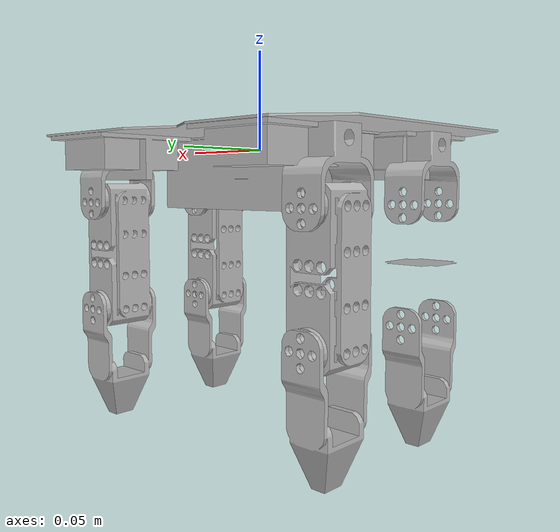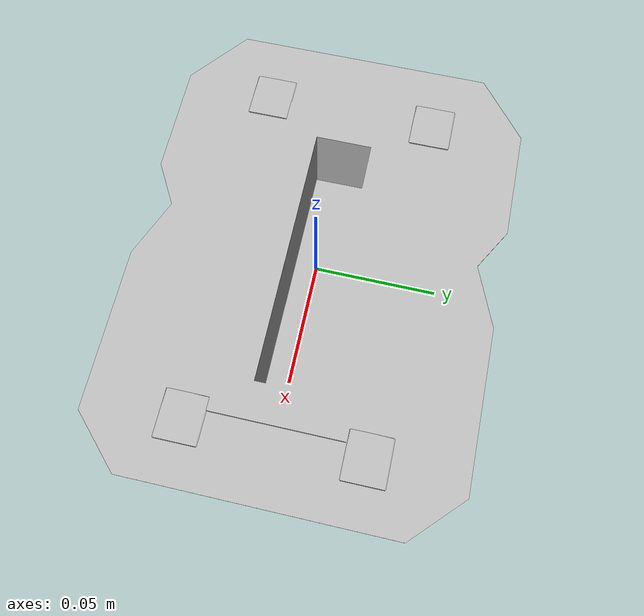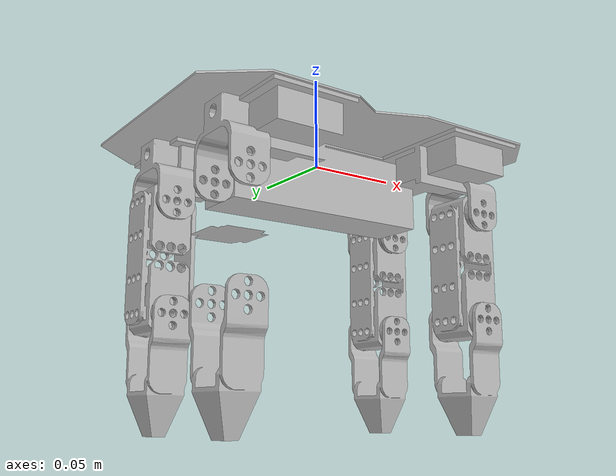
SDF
<sdf version='1.5'>
  <model name='ker'>
    <link name='odom'>
      <pose frame=''>0 0 0 0 -0 0</pose>
      <inertial>
        <pose frame=''>0 0 0 0 -0 0</pose>
        <mass>0.104525</mass>
        <inertia>
          <ixx>7.935e-05</ixx>
          <ixy>-3.8e-07</ixy>
          <ixz>1.27e-06</ixz>
          <iyy>0.00016719</iyy>
          <iyz>3e-08</iyz>
          <izz>0.00023972</izz>
        </inertia>
      </inertial>
      <velocity_decay>
        <linear>10000000</linear>
        <angular>10000000</angular>
      </velocity_decay>
      <collision name='odom_collision'>
        <pose frame=''>0 0 0 0 -0 0</pose>
        <geometry>
          <box>
            <size>0 0 0</size>
          </box>
        </geometry>
      </collision>
      <collision name='odom_collision_odom_1'>
        <pose frame=''>0 0 0 0 -0 0</pose>
        <geometry>
          <box>
            <size>0.2 0.12 0.031</size>
          </box>
        </geometry>
      </collision>
      <visual name='odom_visual'>
        <pose frame=''>0 0 0 0 -0 0</pose>
        <geometry>
          <box>
            <size>0 0 0</size>
          </box>
        </geometry>
      </visual>
      <visual name='odom_visual_odom_1'>
        <pose frame=''>0 0 0 0 -0 0</pose>
        <geometry>
          <mesh>
            <scale>1 1 1</scale>
            <uri>model://ker_description/meshes/platf_3_1.STL</uri>
          </mesh>
        </geometry>
      </visual>
    </link>
    <link name='motor_1'>
      <pose frame=''>0.073 0.036 0.0005 0 -0 0</pose>
      <inertial>
        <pose frame=''>0 0 -0.0125 0 -0 0</pose>
        <mass>0.0082825</mass>
        <inertia>
          <ixx>1.63e-06</ixx>
          <ixy>0</ixy>
          <ixz>0</ixz>
          <iyy>1.14e-06</iyy>
          <iyz>0</iyz>
          <izz>1.03e-06</izz>
        </inertia>
      </inertial>
      <collision name='motor_1_collision'>
        <pose frame=''>0 0 -0.0125 0 -0 0</pose>
        <geometry>
          <box>
            <size>0.022 0.0344 0.0472</size>
          </box>
        </geometry>
      </collision>
      <visual name='motor_1_visual'>
        <pose frame=''>0 0 -0.0125 0 -0 0</pose>
        <geometry>
          <mesh>
            <scale>1 1 1</scale>
            <uri>model://ker_description/meshes/roll.STL</uri>
          </mesh>
        </geometry>
      </visual>
    </link>
    <joint name='motor_1_joint' type='revolute'>
      <child>motor_1</child>
      <parent>odom</parent>
      <axis>
        <xyz>1 0 0</xyz>
        <limit>
          <lower>-3.14</lower>
          <upper>3.14</upper>
          <effort>10</effort>
          <velocity>0.5</velocity>
        </limit>
        <dynamics>
          <damping>0</damping>
          <friction>0</friction>
          <spring_reference>0</spring_reference>
          <spring_stiffness>0</spring_stiffness>
        </dynamics>
        <use_parent_model_frame>1</use_parent_model_frame>
      </axis>
    </joint>
    <link name='humerus_1'>
      <pose frame=''>0.073 0.036 -0.0267 0 -0 0</pose>
      <inertial>
        <pose frame=''>0 0 -0.028 0 -0 0</pose>
        <mass>0.0361976</mass>
        <inertia>
          <ixx>2.198e-05</ixx>
          <ixy>0</ixy>
          <ixz>4e-08</ixz>
          <iyy>2.188e-05</iyy>
          <iyz>0</iyz>
          <izz>3.91e-06</izz>
        </inertia>
      </inertial>
      <velocity_decay>
        <linear>10000000</linear>
        <angular>10000000</angular>
      </velocity_decay>
      <collision name='humerus_1_collision'>
        <pose frame=''>0 0 -0.028 0 -0 0</pose>
        <geometry>
          <box>
            <size>0.022 0.025 0.076</size>
          </box>
        </geometry>
      </collision>
      <visual name='humerus_1_visual'>
        <pose frame=''>0 0 -0.028 0 -0 0</pose>
        <geometry>
          <mesh>
            <scale>1 1 1</scale>
            <uri>model://ker_description/meshes/humerus.stl</uri>
          </mesh>
        </geometry>
      </visual>
    </link>
    <joint name='humerus_1_joint' type='revolute'>
      <child>humerus_1</child>
      <parent>motor_1</parent>
      <axis>
        <xyz>0 1 0</xyz>
        <limit>
          <lower>-3.14</lower>
          <upper>3.14</upper>
          <effort>10</effort>
          <velocity>0.5</velocity>
        </limit>
        <dynamics>
          <damping>0</damping>
          <friction>0</friction>
          <spring_reference>0</spring_reference>
          <spring_stiffness>0</spring_stiffness>
        </dynamics>
        <use_parent_model_frame>1</use_parent_model_frame>
      </axis>
    </joint>
    <link name='radius_1'>
      <pose frame=''>0.073 0.036 -0.0827 0 -0 0</pose>
      <inertial>
        <pose frame=''>0 0 -0.02428 0 -0 0</pose>
        <mass>0.00992447</mass>
        <inertia>
          <ixx>2.69e-06</ixx>
          <ixy>0</ixy>
          <ixz>0</ixz>
          <iyy>1.99e-06</iyy>
          <iyz>0</iyz>
          <izz>1.22e-06</izz>
        </inertia>
      </inertial>
      <velocity_decay>
        <linear>10000000</linear>
        <angular>10000000</angular>
      </velocity_decay>
      <collision name='radius_1_collision'>
        <pose frame=''>0 0 -0.04928 0 -0 0</pose>
        <geometry>
          <sphere>
            <radius>0.01</radius>
          </sphere>
        </geometry>
        <surface>
          <contact>
            <collide_without_contact>0</collide_without_contact>
            <ode>
              <max_vel>1.2</max_vel>
              <min_depth>0</min_depth>
            </ode>
            <bullet>
              <kp>1000000</kp>
              <kd>10</kd>
            </bullet>
          </contact>
          <friction>
            <ode>
              <mu>10</mu>
              <mu2>10</mu2>
              <fdir1>1 1 0</fdir1>
            </ode>
            <bullet>
              <friction>1</friction>
              <friction2>1</friction2>
              <rolling_friction>1</rolling_friction>
              <fdir1>1 1 1</fdir1>
            </bullet>
          </friction>
        </surface>
      </collision>
      <visual name='radius_1_visual'>
        <pose frame=''>0 0 -0.01628 0 -0 0</pose>
        <geometry>
          <mesh>
            <scale>1 1 1</scale>
            <uri>model://ker_description/meshes/radius_3_dec.STL</uri>
          </mesh>
        </geometry>
      </visual>
      <gravity>1</gravity>
      <self_collide>0</self_collide>
    </link>
    <joint name='radius_1_joint' type='revolute'>
      <child>radius_1</child>
      <parent>humerus_1</parent>
      <axis>
        <xyz>0 1 0</xyz>
        <limit>
          <lower>-3.14</lower>
          <upper>3.14</upper>
          <effort>10</effort>
          <velocity>0.5</velocity>
        </limit>
        <dynamics>
          <damping>0</damping>
          <friction>0</friction>
          <spring_reference>0</spring_reference>
          <spring_stiffness>0</spring_stiffness>
        </dynamics>
        <use_parent_model_frame>1</use_parent_model_frame>
      </axis>
    </joint>
    <link name='motor_2'>
      <pose frame=''>0.073 -0.036 0.0005 0 -0 0</pose>
      <inertial>
        <pose frame=''>0 0 -0.0125 0 -0 0</pose>
        <mass>0.0082825</mass>
        <inertia>
          <ixx>1.63e-06</ixx>
          <ixy>0</ixy>
          <ixz>0</ixz>
          <iyy>1.14e-06</iyy>
          <iyz>0</iyz>
          <izz>1.03e-06</izz>
        </inertia>
      </inertial>
      <collision name='motor_2_collision'>
        <pose frame=''>0 0 -0.0125 0 -0 0</pose>
        <geometry>
          <box>
            <size>0.022 0.0344 0.0472</size>
          </box>
        </geometry>
      </collision>
      <visual name='motor_2_visual'>
        <pose frame=''>0 0 -0.0125 0 -0 0</pose>
        <geometry>
          <mesh>
            <scale>1 1 1</scale>
            <uri>model://ker_description/meshes/roll.STL</uri>
          </mesh>
        </geometry>
      </visual>
    </link>
    <joint name='motor_2_joint' type='revolute'>
      <child>motor_2</child>
      <parent>odom</parent>
      <axis>
        <xyz>1 0 0</xyz>
        <limit>
          <lower>-3.14</lower>
          <upper>3.14</upper>
          <effort>10</effort>
          <velocity>0.5</velocity>
        </limit>
        <dynamics>
          <damping>0</damping>
          <friction>0</friction>
          <spring_reference>0</spring_reference>
          <spring_stiffness>0</spring_stiffness>
        </dynamics>
        <use_parent_model_frame>1</use_parent_model_frame>
      </axis>
    </joint>
    <link name='humerus_2'>
      <pose frame=''>0.073 -0.036 -0.0267 0 -0 -3.14159</pose>
      <inertial>
        <pose frame=''>0 0 -0.028 0 -0 0</pose>
        <mass>0.0361976</mass>
        <inertia>
          <ixx>2.198e-05</ixx>
          <ixy>0</ixy>
          <ixz>4e-08</ixz>
          <iyy>2.188e-05</iyy>
          <iyz>0</iyz>
          <izz>3.91e-06</izz>
        </inertia>
      </inertial>
      <velocity_decay>
        <linear>10000000</linear>
        <angular>10000000</angular>
      </velocity_decay>
      <collision name='humerus_2_collision'>
        <pose frame=''>0 0 -0.028 0 -0 0</pose>
        <geometry>
          <box>
            <size>0.022 0.025 0.076</size>
          </box>
        </geometry>
      </collision>
      <visual name='humerus_2_visual'>
        <pose frame=''>0 0 -0.028 0 -0 0</pose>
        <geometry>
          <mesh>
            <scale>1 1 1</scale>
            <uri>model://ker_description/meshes/humerus.stl</uri>
          </mesh>
        </geometry>
      </visual>
    </link>
    <joint name='humerus_2_joint' type='revolute'>
      <child>humerus_2</child>
      <parent>motor_2</parent>
      <axis>
        <xyz>-2.06823e-13 1 0</xyz>
        <limit>
          <lower>-3.14</lower>
          <upper>3.14</upper>
          <effort>10</effort>
          <velocity>0.5</velocity>
        </limit>
        <dynamics>
          <damping>0</damping>
          <friction>0</friction>
          <spring_reference>0</spring_reference>
          <spring_stiffness>0</spring_stiffness>
        </dynamics>
        <use_parent_model_frame>1</use_parent_model_frame>
      </axis>
    </joint>
    <link name='radius_2'>
      <pose frame=''>0.073 -0.036 -0.0827 0 -0 -3.14159</pose>
      <inertial>
        <pose frame=''>0 0 -0.02428 0 -0 0</pose>
        <mass>0.00992447</mass>
        <inertia>
          <ixx>2.69e-06</ixx>
          <ixy>0</ixy>
          <ixz>0</ixz>
          <iyy>1.99e-06</iyy>
          <iyz>0</iyz>
          <izz>1.22e-06</izz>
        </inertia>
      </inertial>
      <velocity_decay>
        <linear>10000000</linear>
        <angular>10000000</angular>
      </velocity_decay>
      <collision name='radius_2_collision'>
        <pose frame=''>0 0 -0.04928 0 -0 0</pose>
        <geometry>
          <sphere>
            <radius>0.01</radius>
          </sphere>
        </geometry>
        <surface>
          <contact>
            <collide_without_contact>0</collide_without_contact>
            <ode>
              <max_vel>1.2</max_vel>
              <min_depth>0</min_depth>
            </ode>
            <bullet>
              <kp>1000000</kp>
              <kd>10</kd>
            </bullet>
          </contact>
          <friction>
            <ode>
              <mu>10</mu>
              <mu2>10</mu2>
              <fdir1>1 1 0</fdir1>
            </ode>
            <bullet>
              <friction>1</friction>
              <friction2>1</friction2>
              <rolling_friction>1</rolling_friction>
              <fdir1>1 1 1</fdir1>
            </bullet>
          </friction>
        </surface>
      </collision>
      <visual name='radius_2_visual'>
        <pose frame=''>0 0 -0.01628 0 -0 0</pose>
        <geometry>
          <mesh>
            <scale>1 1 1</scale>
            <uri>model://ker_description/meshes/radius_3_dec.STL</uri>
          </mesh>
        </geometry>
      </visual>
      <gravity>1</gravity>
      <self_collide>0</self_collide>
    </link>
    <joint name='radius_2_joint' type='revolute'>
      <child>radius_2</child>
      <parent>humerus_2</parent>
      <axis>
        <xyz>-2.06823e-13 1 0</xyz>
        <limit>
          <lower>-3.14</lower>
          <upper>3.14</upper>
          <effort>10</effort>
          <velocity>0.5</velocity>
        </limit>
        <dynamics>
          <damping>0</damping>
          <friction>0</friction>
          <spring_reference>0</spring_reference>
          <spring_stiffness>0</spring_stiffness>
        </dynamics>
        <use_parent_model_frame>1</use_parent_model_frame>
      </axis>
    </joint>
    <link name='motor_3'>
      <pose frame=''>-0.073 -0.036 0.0005 0 -0 0</pose>
      <inertial>
        <pose frame=''>0 0 -0.0125 0 -0 0</pose>
        <mass>0.0082825</mass>
        <inertia>
          <ixx>1.63e-06</ixx>
          <ixy>0</ixy>
          <ixz>0</ixz>
          <iyy>1.14e-06</iyy>
          <iyz>0</iyz>
          <izz>1.03e-06</izz>
        </inertia>
      </inertial>
      <collision name='motor_3_collision'>
        <pose frame=''>0 0 -0.0125 0 -0 0</pose>
        <geometry>
          <box>
            <size>0.022 0.0344 0.0472</size>
          </box>
        </geometry>
      </collision>
      <visual name='motor_3_visual'>
        <pose frame=''>0 0 -0.0125 0 -0 0</pose>
        <geometry>
          <mesh>
            <scale>1 1 1</scale>
            <uri>model://ker_description/meshes/roll.STL</uri>
          </mesh>
        </geometry>
      </visual>
    </link>
    <joint name='motor_3_joint' type='revolute'>
      <child>motor_3</child>
      <parent>odom</parent>
      <axis>
        <xyz>1 0 0</xyz>
        <limit>
          <lower>-3.14</lower>
          <upper>3.14</upper>
          <effort>10</effort>
          <velocity>0.5</velocity>
        </limit>
        <dynamics>
          <damping>0</damping>
          <friction>0</friction>
          <spring_reference>0</spring_reference>
          <spring_stiffness>0</spring_stiffness>
        </dynamics>
        <use_parent_model_frame>1</use_parent_model_frame>
      </axis>
    </joint>
    <link name='femur_2'>
      <pose frame=''>-0.073 -0.036 -0.0267 0 -0 -3.14159</pose>
      <inertial>
        <pose frame=''>0 0 -0.028 0 -0 0</pose>
        <mass>0.0361976</mass>
        <inertia>
          <ixx>2.198e-05</ixx>
          <ixy>0</ixy>
          <ixz>4e-08</ixz>
          <iyy>2.188e-05</iyy>
          <iyz>0</iyz>
          <izz>3.91e-06</izz>
        </inertia>
      </inertial>
       <velocity_decay>
        <linear>10000000</linear>
        <angular>10000000</angular>
      </velocity_decay>
      <collision name='femur_2_collision'>
        <pose frame=''>0 0 -0.028 0 -0 0</pose>
        <geometry>
          <box>
            <size>0.022 0.025 0.076</size>
          </box>
        </geometry>
      </collision>
      <visual name='femur_2_visual'>
        <pose frame=''>0 0 -0.028 0 -0 0</pose>
        <geometry>
          <mesh>
            <scale>1 1 0</scale>
            <uri>model://ker_description/meshes/humerus.stl</uri>
          </mesh>
        </geometry>
      </visual>
    </link>
    <joint name='femur_2_joint' type='revolute'>
      <child>femur_2</child>
      <parent>motor_3</parent>
      <axis>
        <xyz>-2.06823e-13 1 0</xyz>
        <limit>
          <lower>-3.14</lower>
          <upper>3.14</upper>
          <effort>10</effort>
          <velocity>0.5</velocity>
        </limit>
        <dynamics>
          <damping>0</damping>
          <friction>0</friction>
          <spring_reference>0</spring_reference>
          <spring_stiffness>0</spring_stiffness>
        </dynamics>
        <use_parent_model_frame>1</use_parent_model_frame>
      </axis>
    </joint>
    <link name='tibula_2'>
      <pose frame=''>-0.073 -0.036 -0.0827 0 -0 -3.14159</pose>
      <inertial>
        <pose frame=''>0 0 -0.02428 0 -0 0</pose>
        <mass>0.00992447</mass>
        <inertia>
          <ixx>2.69e-06</ixx>
          <ixy>0</ixy>
          <ixz>0</ixz>
          <iyy>1.99e-06</iyy>
          <iyz>0</iyz>
          <izz>1.22e-06</izz>
        </inertia>
      </inertial>
      <velocity_decay>
        <linear>10000000</linear>
        <angular>10000000</angular>
      </velocity_decay>
      <collision name='tibula_2_collision'>
        <pose frame=''>0 0 -0.04928 0 -0 0</pose>
        <geometry>
          <sphere>
            <radius>0.01</radius>
          </sphere>
        </geometry>
        <surface>
          <contact>
            <collide_without_contact>0</collide_without_contact>
            <ode>
              <max_vel>1.2</max_vel>
              <min_depth>0</min_depth>
            </ode>
            <bullet>
              <kp>1000000</kp>
              <kd>10</kd>
            </bullet>
          </contact>
          <friction>
            <ode>
              <mu>10</mu>
              <mu2>10</mu2>
              <fdir1>0 0 0</fdir1>
            </ode>
            <bullet>
              <friction>1</friction>
              <friction2>1</friction2>
              <rolling_friction>1</rolling_friction>
              <fdir1>1 1 1</fdir1>
            </bullet>
          </friction>
        </surface>
      </collision>
      <visual name='tibula_2_visual'>
        <pose frame=''>0 0 -0.01628 0 -0 0</pose>
        <geometry>
          <mesh>
            <scale>1 1 1</scale>
            <uri>model://ker_description/meshes/radius_3_dec.STL</uri>
          </mesh>
        </geometry>
      </visual>
      <gravity>1</gravity>
      <self_collide>0</self_collide>
    </link>
    <joint name='tibula_2_joint' type='revolute'>
      <child>tibula_2</child>
      <parent>femur_2</parent>
      <axis>
        <xyz>-2.06823e-13 1 0</xyz>
        <limit>
          <lower>-3.14</lower>
          <upper>3.14</upper>
          <effort>10</effort>
          <velocity>0.5</velocity>
        </limit>
        <dynamics>
          <damping>0</damping>
          <friction>0</friction>
          <spring_reference>0</spring_reference>
          <spring_stiffness>0</spring_stiffness>
        </dynamics>
        <use_parent_model_frame>1</use_parent_model_frame>
      </axis>
    </joint>
    <link name='motor_4'>
      <pose frame=''>-0.073 0.036 0.0005 0 -0 0</pose>
      <inertial>
        <pose frame=''>0 0 -0.0125 0 -0 0</pose>
        <mass>0.0082825</mass>
        <inertia>
          <ixx>1.63e-06</ixx>
          <ixy>0</ixy>
          <ixz>0</ixz>
          <iyy>1.14e-06</iyy>
          <iyz>0</iyz>
          <izz>1.03e-06</izz>
        </inertia>
      </inertial>
      <collision name='motor_4_collision'>
        <pose frame=''>0 0 -0.0125 0 -0 0</pose>
        <geometry>
          <box>
            <size>0.022 0.0344 0.0472</size>
          </box>
        </geometry>
      </collision>
      <visual name='motor_4_visual'>
        <pose frame=''>0 0 -0.0125 0 -0 0</pose>
        <geometry>
          <mesh>
            <scale>1 1 1</scale>
            <uri>model://ker_description/meshes/roll.STL</uri>
          </mesh>
        </geometry>
      </visual>
    </link>
    <joint name='motor_4_joint' type='revolute'>
      <child>motor_4</child>
      <parent>odom</parent>
      <axis>
        <xyz>1 0 0</xyz>
        <limit>
          <lower>-3.14</lower>
          <upper>3.14</upper>
          <effort>10</effort>
          <velocity>0.5</velocity>
        </limit>
        <dynamics>
          <damping>0</damping>
          <friction>0</friction>
          <spring_reference>0</spring_reference>
          <spring_stiffness>0</spring_stiffness>
        </dynamics>
        <use_parent_model_frame>1</use_parent_model_frame>
      </axis>
    </joint>
    <link name='femur_1'>
      <pose frame=''>-0.073 0.036 -0.0267 0 -0 0</pose>
      <inertial>
        <pose frame=''>0 0 -0.028 0 -0 0</pose>
        <mass>0.0361976</mass>
        <inertia>
          <ixx>2.198e-05</ixx>
          <ixy>0</ixy>
          <ixz>4e-08</ixz>
          <iyy>2.188e-05</iyy>
          <iyz>0</iyz>
          <izz>3.91e-06</izz>
        </inertia>
      </inertial>
      <velocity_decay>
        <linear>10000000</linear>
        <angular>10000000</angular>
      </velocity_decay>
      <collision name='femur_1_collision'>
        <pose frame=''>0 0 -0.028 0 -0 0</pose>
        <geometry>
          <box>
            <size>0.022 0.025 0.076</size>
          </box>
        </geometry>
      </collision>
      <visual name='femur_1_visual'>
        <pose frame=''>0 0 -0.028 0 -0 0</pose>
        <geometry>
          <mesh>
            <scale>1 1 1</scale>
            <uri>model://ker_description/meshes/humerus.stl</uri>
          </mesh>
        </geometry>
      </visual>
    </link>
    <joint name='femur_1_joint' type='revolute'>
      <child>femur_1</child>
      <parent>motor_4</parent>
      <axis>
        <xyz>0 1 0</xyz>
        <limit>
          <lower>-3.14</lower>
          <upper>3.14</upper>
          <effort>10</effort>
          <velocity>0.5</velocity>
        </limit>
        <dynamics>
          <damping>0</damping>
          <friction>0</friction>
          <spring_reference>0</spring_reference>
          <spring_stiffness>0</spring_stiffness>
        </dynamics>
        <use_parent_model_frame>1</use_parent_model_frame>
      </axis>
    </joint>
    <link name='tibula_1'>
      <pose frame=''>-0.073 0.036 -0.0827 0 -0 0</pose>
      <inertial>
        <pose frame=''>0 0 -0.02428 0 -0 0</pose>
        <mass>0.00992447</mass>
        <inertia>
          <ixx>2.69e-06</ixx>
          <ixy>0</ixy>
          <ixz>0</ixz>
          <iyy>1.99e-06</iyy>
          <iyz>0</iyz>
          <izz>1.22e-06</izz>
        </inertia>
      </inertial>
      <velocity_decay>
        <linear>10000000</linear>
        <angular>10000000</angular>
      </velocity_decay>
      <collision name='tibula_1_collision'>
        <pose frame=''>0 0 -0.04928 0 -0 0</pose>
        <geometry>
          <sphere>
            <radius>0.01</radius>
          </sphere>
        </geometry>
        <surface>
          <contact>
            <collide_without_contact>0</collide_without_contact>
            <ode>
              <max_vel>1.2</max_vel>
              <min_depth>0</min_depth>
            </ode>
            <bullet>
              <kp>1000000</kp>
              <kd>10</kd>
            </bullet>
          </contact>
          <friction>
            <ode>
              <mu>10</mu>
              <mu2>10</mu2>
              <fdir1>0 0 0</fdir1>
            </ode>
            <bullet>
              <friction>1</friction>
              <friction2>1</friction2>
              <rolling_friction>1</rolling_friction>
              <fdir1>1 1 1</fdir1>
            </bullet>
          </friction>
        </surface>
      </collision>
      <visual name='tibula_1_visual'>
        <pose frame=''>0 0 -0.01628 0 -0 0</pose>
        <geometry>
          <mesh>
            <scale>1 1 1</scale>
            <uri>model://ker_description/meshes/radius_3_dec.STL</uri>
          </mesh>
        </geometry>
      </visual>
      <gravity>1</gravity>
      <self_collide>0</self_collide>
    </link>
    <joint name='tibula_1_joint' type='revolute'>
      <child>tibula_1</child>
      <parent>femur_1</parent>
      <axis>
        <xyz>0 1 0</xyz>
        <limit>
          <lower>-3.14</lower>
          <upper>3.14</upper>
          <effort>10</effort>
          <velocity>0.5</velocity>
        </limit>
        <dynamics>
          <damping>0</damping>
          <friction>0</friction>
          <spring_reference>0</spring_reference>
          <spring_stiffness>0</spring_stiffness>
        </dynamics>
        <use_parent_model_frame>1</use_parent_model_frame>
      </axis>
    </joint>
    <static>0</static>
    <plugin name='gazebo_ros_control' filename='libgazebo_ros_control.so'>
      <robotParam>robot_description</robotParam>
    </plugin>
  </model>
</sdf>
